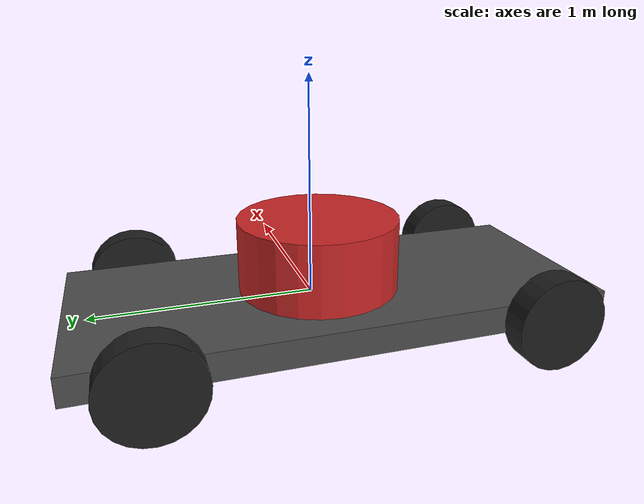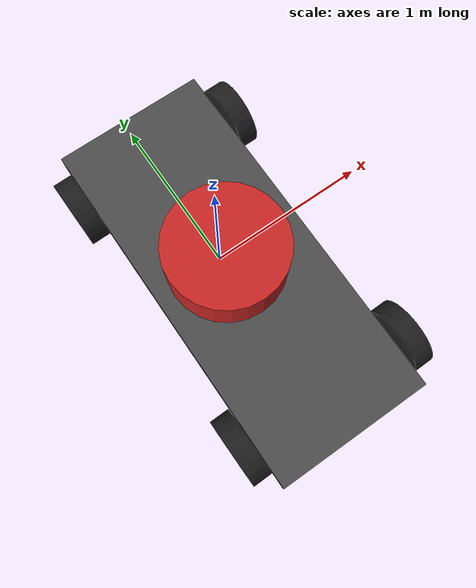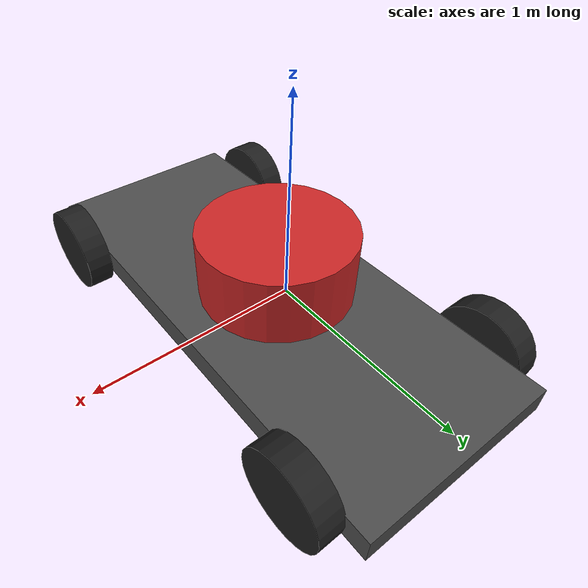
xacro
<?xml version="1.0" ?>
<robot name="bfl_5_lid" xmlns:xacro="http://ros.org/wiki/xacro">
   <!--xacro:include filename="$(find turtlebot3_description)/urdf/common_properties.xacro"/-->
   <xacro:include filename="$(find dharmendra_model)/gazebo/bfl_5_lidar/bfl_5_lidar.gazebo"/>

 <link name= "base_footprint" />

 <joint name="base_joint" type="fixed">
    <parent link="base_footprint"/>
    <child link="base_link"/>
    <origin xyz="0.04061 -0.0922  -0.0155" rpy="0 0 0"/>
 </joint>

 <link name="base_link">
    <inertial>
      <mass value="0.309481"/>
      <origin xyz="0 0 0" rpy="0 0 0"/>
      <inertia ixx="0.148031" ixy="0" ixz="0" iyy="0.0262218" iyz="0" izz="0.17339"/>
    </inertial>
    <collision>
      <origin xyz="0.00595 -0.00225 -0.04012" rpy="0 0 0"/>
      <geometry>
        <box size="1 2.3923 0.129378"/>
      </geometry>
    </collision>
    <visual>
      <origin xyz="0.00595 -0.00225 -0.04012" rpy="0 0 0"/>
      <geometry>
        <box size="1 2.3923 0.129378"/>
      </geometry>
    </visual>
  </link>

  <joint name="front_right_wheel_joint" type="continuous">
    <parent link="base_link"/>
    <child link="oright_front_link"/>
    <origin xyz="-0.56242 -0.88125 -0.04012" rpy="-1.57101 -0.01655 -1.55771"/>
    <axis xyz="0 0 1"/>
    <limit lower="-1.79769e+308" upper="1.79769e+308" effort="-1.0" velocity="-1.0"/>
  </joint>

  <link name="oright_front_link">
    <inertial>
      <mass value="0.0232297"/>
      <origin xyz="0 0 0" rpy="0 0 0"/>
      <inertia ixx="0.000300218" ixy="0" ixz="0" iyy="0.000300218" iyz="0" izz="0.000540024"/>
    </inertial>
    <collision>
      <origin xyz="0 0 0" rpy="0 0 0"/>
      <geometry>
        <cylinder radius="0.215626" length="0.124916"/>
      </geometry>
    </collision>
    <visual>
      <origin xyz="0 0 0" rpy="0 0 0"/>
      <geometry>
        <cylinder radius="0.215626" length="0.124916"/>
      </geometry>
    </visual>
  </link>

  <joint name="front_left_wheel_joint" type="continuous">
    <parent link="base_link"/>
    <child link="nleft_front_link"/>
    <origin xyz="0.56943 -0.89152 -0.03775" rpy="-1.57101 -0.01655 -1.55771"/>
    <axis xyz="0 0 1"/>
    <limit lower="-1.79769e+308" upper="1.79769e+308" effort="-1.0" velocity="-1.0"/>
  </joint>

  <link name="nleft_front_link">
    <inertial>
      <mass value="0.0232297"/>
      <origin xyz="0 0 0" rpy="0 0 0"/>
      <inertia ixx="0.000300218" ixy="0" ixz="0" iyy="0.000300218" iyz="0" izz="0.000540024"/>
    </inertial>
    <collision>
      <origin xyz="0 0 0" rpy="0 0 0"/>
      <geometry>
        <cylinder radius="0.215626" length="0.124916"/>
      </geometry>
    </collision>
    <visual>
      <origin xyz="0 0 0" rpy="0 0 0"/>
      <geometry>
        <cylinder radius="0.215626" length="0.124916"/>
      </geometry>
    </visual>
  </link>

  <joint name="back_right_wheel_joint" type="continuous">
    <parent link="base_link"/>
    <child link="mright_back_link"/>
    <origin xyz="-0.56097  0.85576 -0.04012" rpy="-1.57101 -0.01655 -1.55771"/>
    <axis xyz="0 0 1"/>
    <limit lower="-1.79769e+308" upper="1.79769e+308" effort="-1.0" velocity="-1.0"/>
  </joint>

  <link name="mright_back_link">
    <inertial>
      <mass value="0.0232297"/>
      <origin xyz="0 0 0" rpy="0 0 0"/>
      <inertia ixx="0.000300218" ixy="0" ixz="0" iyy="0.000300218" iyz="0" izz="0.000540024"/>
    </inertial>
    <collision>
      <origin xyz="0 0 0" rpy="0 0 0"/>
      <geometry>
        <cylinder radius="0.215626" length="0.124916"/>
      </geometry>
    </collision>
    <visual>
      <origin xyz="0 0 0" rpy="0 0 0"/>
      <geometry>
        <cylinder radius="0.215626" length="0.124916"/>
      </geometry>
    </visual>
  </link>

  <joint name="back_left_wheel_joint" type="continuous">
    <parent link="base_link"/>
    <child link="left_back_link"/>
    <origin xyz="0.5659   0.87025 -0.04178" rpy="-1.57101 -0.01655 -1.55771"/>
    <axis xyz="0 0 1"/>
    <limit lower="-1.79769e+308" upper="1.79769e+308" effort="-1.0" velocity="-1.0"/>
  </joint>

   <link name="left_back_link">
    <inertial>
      <mass value="0.0232297"/>
      <origin xyz="0 0 0" rpy="0 0 0"/>
      <inertia ixx="0.000300218" ixy="0" ixz="0" iyy="0.000300218" iyz="0" izz="0.000540024"/>
    </inertial>
    <collision>
      <origin xyz="0 0 0" rpy="0 0 0"/>
      <geometry>
        <cylinder radius="0.215626" length="0.124916"/>
      </geometry>
    </collision>
    <visual>
      <origin xyz="0 0 0" rpy="0 0 0"/>
      <geometry>
        <cylinder radius="0.215626" length="0.124916"/>
      </geometry>
    </visual>
  </link>

  <joint name="lidar_joint" type="fixed">
    <parent link="base_link"/>
    <child link="plidar_link"/>
    <origin xyz="-0.01788  0.04902  0.19991" rpy="0 0 0"/>
    <axis xyz="0 0 0"/>
    <limit lower="0" upper="0" effort="0" velocity="0"/>
  </joint>

  <link name="plidar_link">
    <inertial>
      <mass value="0.1868"/>
      <origin xyz="0 0 0" rpy="0 0 0"/>
      <inertia ixx="0.00826764" ixy="0" ixz="0" iyy="0.00826764" iyz="0" izz="0.013065"/>
    </inertial>
    <collision>
      <origin xyz="0 0 0" rpy="0 0 0"/>
      <geometry>
        <cylinder radius="0.374009" length="0.333864"/>
      </geometry>
    </collision>
    <visual>
      <origin xyz="0 0 0" rpy="0 0 0"/>
      <geometry>
        <cylinder radius="0.374009" length="0.333864"/>
      </geometry>
    </visual>
  </link>
</robot>
